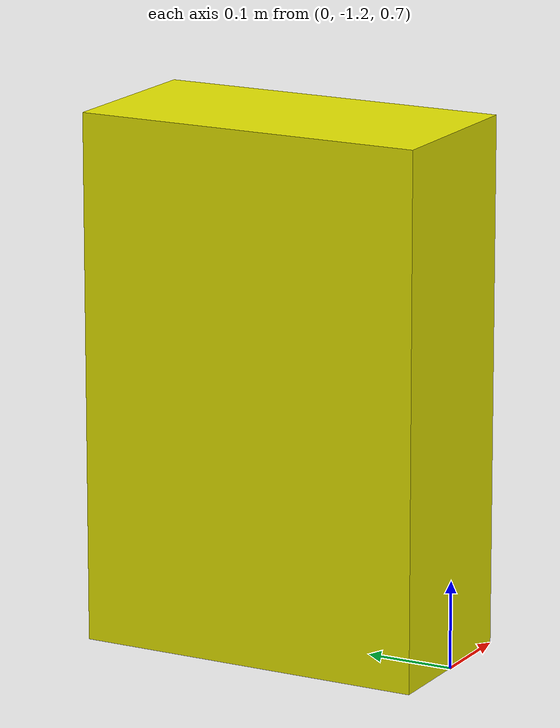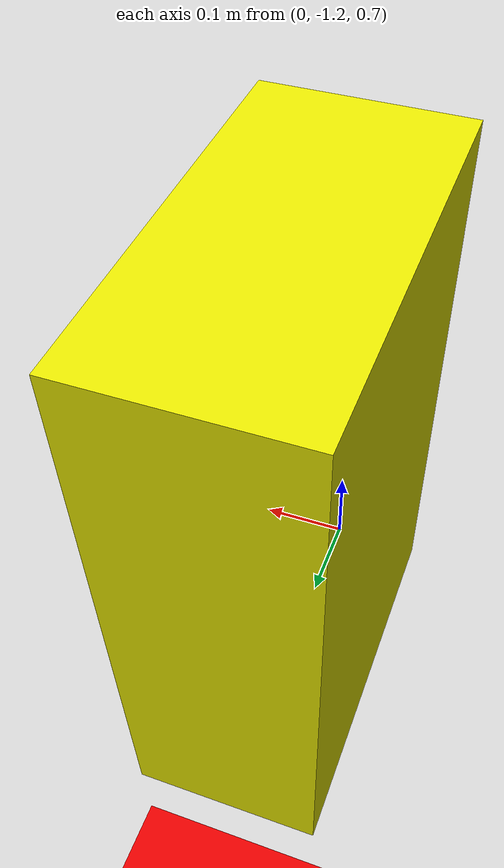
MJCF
<mujoco>
    <worldbody>
        <light diffuse=".5 .5 .5" pos="0 0 3" dir="0 0 -1"/>
        <geom type="plane" size="1 1 1" rgba=".9 0 0 1"/>
        <body pos="0 -0.5 0.5">
            <joint type="free"/>
            <geom type="box" pos="0 -0.5 0.5" size=".1 .2 .3" rgba="0.9 .9 0 1"/>
        </body>
      </worldbody>
</mujoco>
